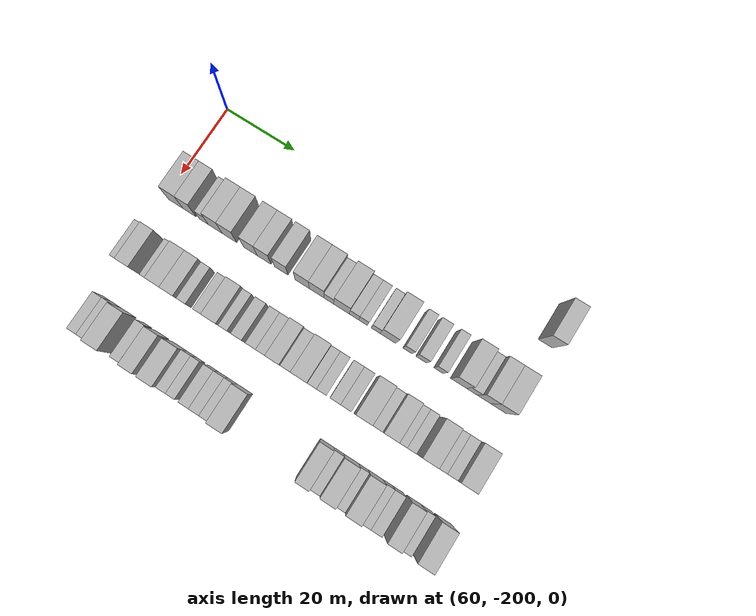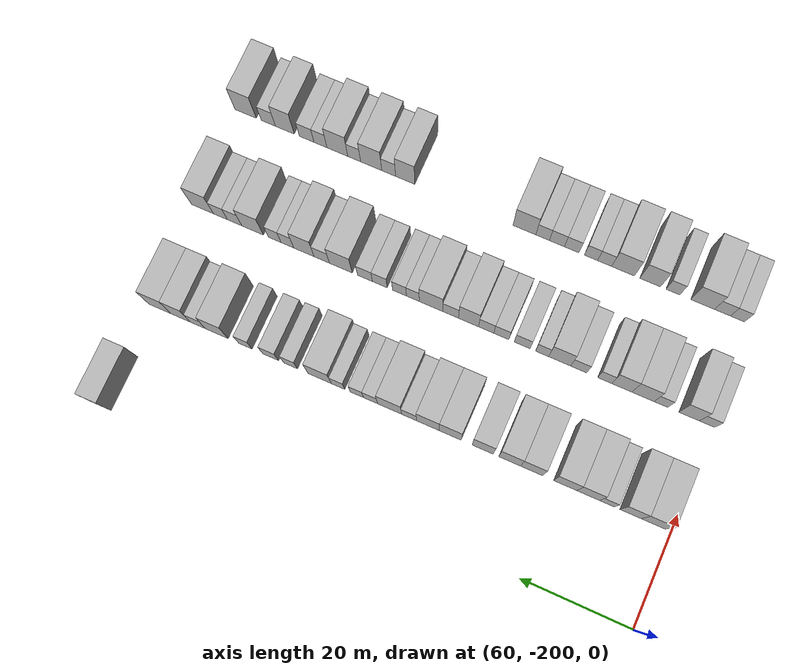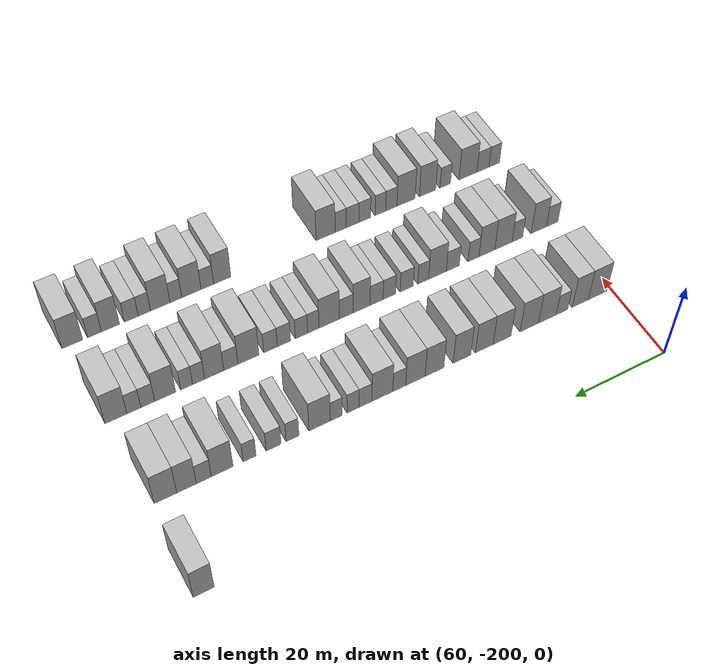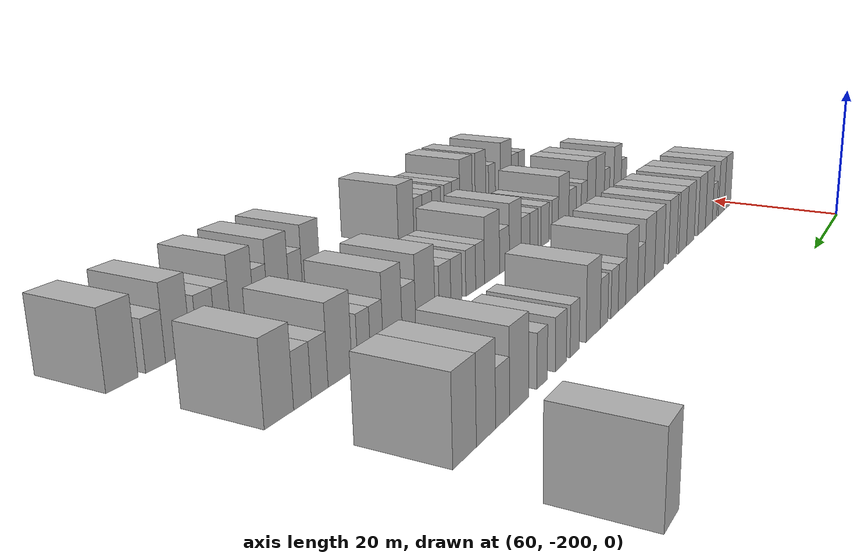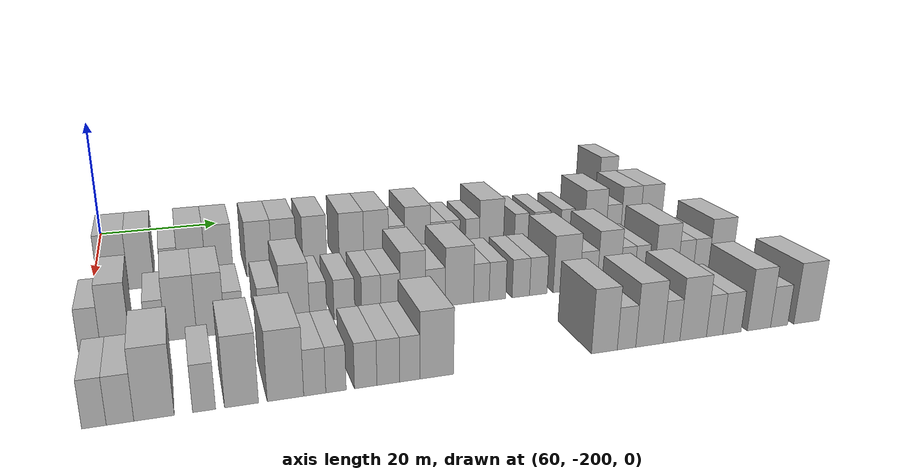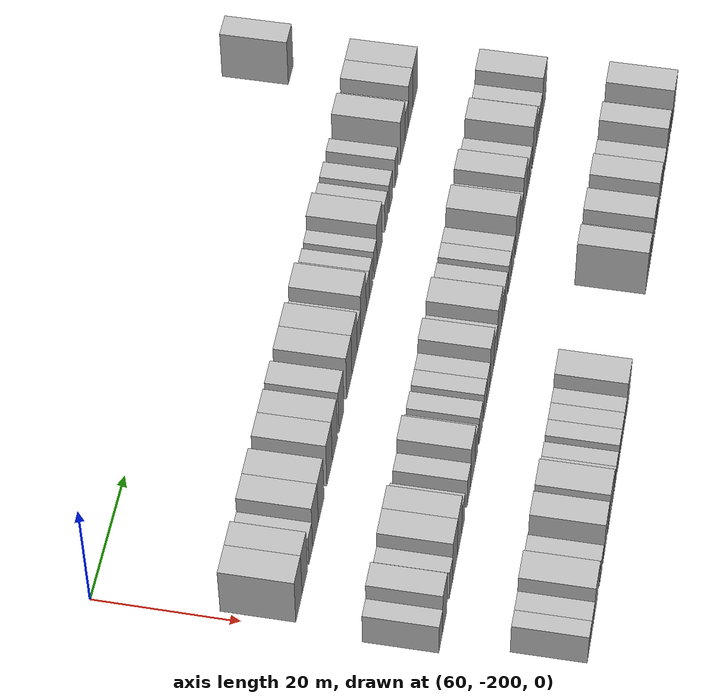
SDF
<sdf version="1.6">
 <world name="default">
  <model name="building_410">
   <static>1</static>
   <pose>63.0000 -104.4434 0 0.000000 0.000000 0.000000</pose>
   <link name="link">
    <pose>0 0 4.50 0 0 0</pose>
    <collision name="collision"><geometry><box><size>10.0000 3.8177 9.0000</size></box></geometry></collision>
    <visual name="visual">
     <cast_shadows>0</cast_shadows>
     <geometry><box><size>10.0000 3.8177 9.0000</size></box></geometry>
     <material>
      <script>
       <uri>model://HANNAS_wall/materials/scripts</uri>
       <uri>model://HANNAS_wall/materials/textures</uri>
       <name>vrc/HANNAS_wall</name>
      </script>
     </material>
    </visual>
   </link>
  </model>
  <model name="building_549">
   <static>1</static>
   <pose>82.0000 -196.7542 0 0.000000 0.000000 0.000000</pose>
   <link name="link">
    <pose>0 0 4.50 0 0 0</pose>
    <collision name="collision"><geometry><box><size>10.0000 4.3258 9.0000</size></box></geometry></collision>
    <visual name="visual">
     <cast_shadows>0</cast_shadows>
     <geometry><box><size>10.0000 4.3258 9.0000</size></box></geometry>
     <material>
      <script>
       <uri>model://HANNAS_wall/materials/scripts</uri>
       <uri>model://HANNAS_wall/materials/textures</uri>
       <name>vrc/HANNAS_wall</name>
      </script>
     </material>
    </visual>
   </link>
  </model>
  <model name="building_550">
   <static>1</static>
   <pose>82.0000 -192.7219 0 0.000000 0.000000 0.000000</pose>
   <link name="link">
    <pose>0 0 4.50 0 0 0</pose>
    <collision name="collision"><geometry><box><size>10.0000 3.7388 9.0000</size></box></geometry></collision>
    <visual name="visual">
     <cast_shadows>0</cast_shadows>
     <geometry><box><size>10.0000 3.7388 9.0000</size></box></geometry>
     <material>
      <script>
       <uri>model://HANNAS_wall/materials/scripts</uri>
       <uri>model://HANNAS_wall/materials/textures</uri>
       <name>vrc/HANNAS_wall</name>
      </script>
     </material>
    </visual>
   </link>
  </model>
  <model name="building_551">
   <static>1</static>
   <pose>82.0000 -188.5365 0 0.000000 0.000000 0.000000</pose>
   <link name="link">
    <pose>0 0 3.00 0 0 0</pose>
    <collision name="collision"><geometry><box><size>10.0000 2.6321 6.0000</size></box></geometry></collision>
    <visual name="visual">
     <cast_shadows>0</cast_shadows>
     <geometry><box><size>10.0000 2.6321 6.0000</size></box></geometry>
     <material>
      <script>
       <uri>model://HANNAS_wall/materials/scripts</uri>
       <uri>model://HANNAS_wall/materials/textures</uri>
       <name>vrc/HANNAS_wall</name>
      </script>
     </material>
    </visual>
   </link>
  </model>
  <model name="building_552">
   <static>1</static>
   <pose>82.0000 -185.1919 0 0.000000 0.000000 0.000000</pose>
   <link name="link">
    <pose>0 0 4.50 0 0 0</pose>
    <collision name="collision"><geometry><box><size>10.0000 4.0571 9.0000</size></box></geometry></collision>
    <visual name="visual">
     <cast_shadows>0</cast_shadows>
     <geometry><box><size>10.0000 4.0571 9.0000</size></box></geometry>
     <material>
      <script>
       <uri>model://HANNAS_wall/materials/scripts</uri>
       <uri>model://HANNAS_wall/materials/textures</uri>
       <name>vrc/HANNAS_wall</name>
      </script>
     </material>
    </visual>
   </link>
  </model>
  <model name="building_553">
   <static>1</static>
   <pose>82.0000 -181.0934 0 0.000000 0.000000 0.000000</pose>
   <link name="link">
    <pose>0 0 4.50 0 0 0</pose>
    <collision name="collision"><geometry><box><size>10.0000 4.1399 9.0000</size></box></geometry></collision>
    <visual name="visual">
     <cast_shadows>0</cast_shadows>
     <geometry><box><size>10.0000 4.1399 9.0000</size></box></geometry>
     <material>
      <script>
       <uri>model://HANNAS_wall/materials/scripts</uri>
       <uri>model://HANNAS_wall/materials/textures</uri>
       <name>vrc/HANNAS_wall</name>
      </script>
     </material>
    </visual>
   </link>
  </model>
  <model name="building_554">
   <static>1</static>
   <pose>82.0000 -175.0363 0 0.000000 0.000000 0.000000</pose>
   <link name="link">
    <pose>0 0 4.50 0 0 0</pose>
    <collision name="collision"><geometry><box><size>10.0000 3.9745 9.0000</size></box></geometry></collision>
    <visual name="visual">
     <cast_shadows>0</cast_shadows>
     <geometry><box><size>10.0000 3.9745 9.0000</size></box></geometry>
     <material>
      <script>
       <uri>model://HANNAS_wall/materials/scripts</uri>
       <uri>model://HANNAS_wall/materials/textures</uri>
       <name>vrc/HANNAS_wall</name>
      </script>
     </material>
    </visual>
   </link>
  </model>
  <model name="building_555">
   <static>1</static>
   <pose>82.0000 -171.0929 0 0.000000 0.000000 0.000000</pose>
   <link name="link">
    <pose>0 0 4.50 0 0 0</pose>
    <collision name="collision"><geometry><box><size>10.0000 3.9124 9.0000</size></box></geometry></collision>
    <visual name="visual">
     <cast_shadows>0</cast_shadows>
     <geometry><box><size>10.0000 3.9124 9.0000</size></box></geometry>
     <material>
      <script>
       <uri>model://HANNAS_wall/materials/scripts</uri>
       <uri>model://HANNAS_wall/materials/textures</uri>
       <name>vrc/HANNAS_wall</name>
      </script>
     </material>
    </visual>
   </link>
  </model>
  <model name="building_556">
   <static>1</static>
   <pose>82.0000 -166.2142 0 0.000000 0.000000 0.000000</pose>
   <link name="link">
    <pose>0 0 4.50 0 0 0</pose>
    <collision name="collision"><geometry><box><size>10.0000 3.8451 9.0000</size></box></geometry></collision>
    <visual name="visual">
     <cast_shadows>0</cast_shadows>
     <geometry><box><size>10.0000 3.8451 9.0000</size></box></geometry>
     <material>
      <script>
       <uri>model://HANNAS_wall/materials/scripts</uri>
       <uri>model://HANNAS_wall/materials/textures</uri>
       <name>vrc/HANNAS_wall</name>
      </script>
     </material>
    </visual>
   </link>
  </model>
  <model name="building_557">
   <static>1</static>
   <pose>82.0000 -160.2772 0 0.000000 0.000000 0.000000</pose>
   <link name="link">
    <pose>0 0 4.50 0 0 0</pose>
    <collision name="collision"><geometry><box><size>10.0000 4.0288 9.0000</size></box></geometry></collision>
    <visual name="visual">
     <cast_shadows>0</cast_shadows>
     <geometry><box><size>10.0000 4.0288 9.0000</size></box></geometry>
     <material>
      <script>
       <uri>model://HANNAS_wall/materials/scripts</uri>
       <uri>model://HANNAS_wall/materials/textures</uri>
       <name>vrc/HANNAS_wall</name>
      </script>
     </material>
    </visual>
   </link>
  </model>
  <model name="building_558">
   <static>1</static>
   <pose>82.0000 -156.1959 0 0.000000 0.000000 0.000000</pose>
   <link name="link">
    <pose>0 0 4.50 0 0 0</pose>
    <collision name="collision"><geometry><box><size>10.0000 4.1338 9.0000</size></box></geometry></collision>
    <visual name="visual">
     <cast_shadows>0</cast_shadows>
     <geometry><box><size>10.0000 4.1338 9.0000</size></box></geometry>
     <material>
      <script>
       <uri>model://HANNAS_wall/materials/scripts</uri>
       <uri>model://HANNAS_wall/materials/textures</uri>
       <name>vrc/HANNAS_wall</name>
      </script>
     </material>
    </visual>
   </link>
  </model>
  <model name="building_559">
   <static>1</static>
   <pose>82.0000 -152.7571 0 0.000000 0.000000 0.000000</pose>
   <link name="link">
    <pose>0 0 3.00 0 0 0</pose>
    <collision name="collision"><geometry><box><size>10.0000 2.7437 6.0000</size></box></geometry></collision>
    <visual name="visual">
     <cast_shadows>0</cast_shadows>
     <geometry><box><size>10.0000 2.7437 6.0000</size></box></geometry>
     <material>
      <script>
       <uri>model://HANNAS_wall/materials/scripts</uri>
       <uri>model://HANNAS_wall/materials/textures</uri>
       <name>vrc/HANNAS_wall</name>
      </script>
     </material>
    </visual>
   </link>
  </model>
  <model name="building_560">
   <static>1</static>
   <pose>82.0000 -149.1982 0 0.000000 0.000000 0.000000</pose>
   <link name="link">
    <pose>0 0 4.50 0 0 0</pose>
    <collision name="collision"><geometry><box><size>10.0000 4.3741 9.0000</size></box></geometry></collision>
    <visual name="visual">
     <cast_shadows>0</cast_shadows>
     <geometry><box><size>10.0000 4.3741 9.0000</size></box></geometry>
     <material>
      <script>
       <uri>model://HANNAS_wall/materials/scripts</uri>
       <uri>model://HANNAS_wall/materials/textures</uri>
       <name>vrc/HANNAS_wall</name>
      </script>
     </material>
    </visual>
   </link>
  </model>
  <model name="building_561">
   <static>1</static>
   <pose>82.0000 -145.6957 0 0.000000 0.000000 0.000000</pose>
   <link name="link">
    <pose>0 0 3.00 0 0 0</pose>
    <collision name="collision"><geometry><box><size>10.0000 2.6309 6.0000</size></box></geometry></collision>
    <visual name="visual">
     <cast_shadows>0</cast_shadows>
     <geometry><box><size>10.0000 2.6309 6.0000</size></box></geometry>
     <material>
      <script>
       <uri>model://HANNAS_wall/materials/scripts</uri>
       <uri>model://HANNAS_wall/materials/textures</uri>
       <name>vrc/HANNAS_wall</name>
      </script>
     </material>
    </visual>
   </link>
  </model>
  <model name="building_562">
   <static>1</static>
   <pose>82.0000 -143.1445 0 0.000000 0.000000 0.000000</pose>
   <link name="link">
    <pose>0 0 3.00 0 0 0</pose>
    <collision name="collision"><geometry><box><size>10.0000 2.4714 6.0000</size></box></geometry></collision>
    <visual name="visual">
     <cast_shadows>0</cast_shadows>
     <geometry><box><size>10.0000 2.4714 6.0000</size></box></geometry>
     <material>
      <script>
       <uri>model://HANNAS_wall/materials/scripts</uri>
       <uri>model://HANNAS_wall/materials/textures</uri>
       <name>vrc/HANNAS_wall</name>
      </script>
     </material>
    </visual>
   </link>
  </model>
  <model name="building_563">
   <static>1</static>
   <pose>82.0000 -139.6750 0 0.000000 0.000000 0.000000</pose>
   <link name="link">
    <pose>0 0 3.00 0 0 0</pose>
    <collision name="collision"><geometry><box><size>10.0000 2.4677 6.0000</size></box></geometry></collision>
    <visual name="visual">
     <cast_shadows>0</cast_shadows>
     <geometry><box><size>10.0000 2.4677 6.0000</size></box></geometry>
     <material>
      <script>
       <uri>model://HANNAS_wall/materials/scripts</uri>
       <uri>model://HANNAS_wall/materials/textures</uri>
       <name>vrc/HANNAS_wall</name>
      </script>
     </material>
    </visual>
   </link>
  </model>
  <model name="building_564">
   <static>1</static>
   <pose>82.0000 -136.2733 0 0.000000 0.000000 0.000000</pose>
   <link name="link">
    <pose>0 0 4.50 0 0 0</pose>
    <collision name="collision"><geometry><box><size>10.0000 4.3358 9.0000</size></box></geometry></collision>
    <visual name="visual">
     <cast_shadows>0</cast_shadows>
     <geometry><box><size>10.0000 4.3358 9.0000</size></box></geometry>
     <material>
      <script>
       <uri>model://HANNAS_wall/materials/scripts</uri>
       <uri>model://HANNAS_wall/materials/textures</uri>
       <name>vrc/HANNAS_wall</name>
      </script>
     </material>
    </visual>
   </link>
  </model>
  <model name="building_565">
   <static>1</static>
   <pose>82.0000 -130.8225 0 0.000000 0.000000 0.000000</pose>
   <link name="link">
    <pose>0 0 3.00 0 0 0</pose>
    <collision name="collision"><geometry><box><size>10.0000 2.5658 6.0000</size></box></geometry></collision>
    <visual name="visual">
     <cast_shadows>0</cast_shadows>
     <geometry><box><size>10.0000 2.5658 6.0000</size></box></geometry>
     <material>
      <script>
       <uri>model://HANNAS_wall/materials/scripts</uri>
       <uri>model://HANNAS_wall/materials/textures</uri>
       <name>vrc/HANNAS_wall</name>
      </script>
     </material>
    </visual>
   </link>
  </model>
  <model name="building_566">
   <static>1</static>
   <pose>82.0000 -127.0625 0 0.000000 0.000000 0.000000</pose>
   <link name="link">
    <pose>0 0 3.00 0 0 0</pose>
    <collision name="collision"><geometry><box><size>10.0000 2.9542 6.0000</size></box></geometry></collision>
    <visual name="visual">
     <cast_shadows>0</cast_shadows>
     <geometry><box><size>10.0000 2.9542 6.0000</size></box></geometry>
     <material>
      <script>
       <uri>model://HANNAS_wall/materials/scripts</uri>
       <uri>model://HANNAS_wall/materials/textures</uri>
       <name>vrc/HANNAS_wall</name>
      </script>
     </material>
    </visual>
   </link>
  </model>
  <model name="building_567">
   <static>1</static>
   <pose>82.0000 -122.3227 0 0.000000 0.000000 0.000000</pose>
   <link name="link">
    <pose>0 0 3.00 0 0 0</pose>
    <collision name="collision"><geometry><box><size>10.0000 2.5252 6.0000</size></box></geometry></collision>
    <visual name="visual">
     <cast_shadows>0</cast_shadows>
     <geometry><box><size>10.0000 2.5252 6.0000</size></box></geometry>
     <material>
      <script>
       <uri>model://HANNAS_wall/materials/scripts</uri>
       <uri>model://HANNAS_wall/materials/textures</uri>
       <name>vrc/HANNAS_wall</name>
      </script>
     </material>
    </visual>
   </link>
  </model>
  <model name="building_568">
   <static>1</static>
   <pose>82.0000 -116.9571 0 0.000000 0.000000 0.000000</pose>
   <link name="link">
    <pose>0 0 4.50 0 0 0</pose>
    <collision name="collision"><geometry><box><size>10.0000 4.2060 9.0000</size></box></geometry></collision>
    <visual name="visual">
     <cast_shadows>0</cast_shadows>
     <geometry><box><size>10.0000 4.2060 9.0000</size></box></geometry>
     <material>
      <script>
       <uri>model://HANNAS_wall/materials/scripts</uri>
       <uri>model://HANNAS_wall/materials/textures</uri>
       <name>vrc/HANNAS_wall</name>
      </script>
     </material>
    </visual>
   </link>
  </model>
  <model name="building_569">
   <static>1</static>
   <pose>82.0000 -113.4150 0 0.000000 0.000000 0.000000</pose>
   <link name="link">
    <pose>0 0 3.00 0 0 0</pose>
    <collision name="collision"><geometry><box><size>10.0000 2.8783 6.0000</size></box></geometry></collision>
    <visual name="visual">
     <cast_shadows>0</cast_shadows>
     <geometry><box><size>10.0000 2.8783 6.0000</size></box></geometry>
     <material>
      <script>
       <uri>model://HANNAS_wall/materials/scripts</uri>
       <uri>model://HANNAS_wall/materials/textures</uri>
       <name>vrc/HANNAS_wall</name>
      </script>
     </material>
    </visual>
   </link>
  </model>
  <model name="building_570">
   <static>1</static>
   <pose>82.0000 -110.1011 0 0.000000 0.000000 0.000000</pose>
   <link name="link">
    <pose>0 0 4.50 0 0 0</pose>
    <collision name="collision"><geometry><box><size>10.0000 3.7495 9.0000</size></box></geometry></collision>
    <visual name="visual">
     <cast_shadows>0</cast_shadows>
     <geometry><box><size>10.0000 3.7495 9.0000</size></box></geometry>
     <material>
      <script>
       <uri>model://HANNAS_wall/materials/scripts</uri>
       <uri>model://HANNAS_wall/materials/textures</uri>
       <name>vrc/HANNAS_wall</name>
      </script>
     </material>
    </visual>
   </link>
  </model>
  <model name="building_571">
   <static>1</static>
   <pose>82.0000 -106.0929 0 0.000000 0.000000 0.000000</pose>
   <link name="link">
    <pose>0 0 4.50 0 0 0</pose>
    <collision name="collision"><geometry><box><size>10.0000 4.2669 9.0000</size></box></geometry></collision>
    <visual name="visual">
     <cast_shadows>0</cast_shadows>
     <geometry><box><size>10.0000 4.2669 9.0000</size></box></geometry>
     <material>
      <script>
       <uri>model://HANNAS_wall/materials/scripts</uri>
       <uri>model://HANNAS_wall/materials/textures</uri>
       <name>vrc/HANNAS_wall</name>
      </script>
     </material>
    </visual>
   </link>
  </model>
  <model name="building_728">
   <static>1</static>
   <pose>101.0000 -199.0453 0 0.000000 0.000000 0.000000</pose>
   <link name="link">
    <pose>0 0 3.00 0 0 0</pose>
    <collision name="collision"><geometry><box><size>10.0000 2.7392 6.0000</size></box></geometry></collision>
    <visual name="visual">
     <cast_shadows>0</cast_shadows>
     <geometry><box><size>10.0000 2.7392 6.0000</size></box></geometry>
     <material>
      <script>
       <uri>model://HANNAS_wall/materials/scripts</uri>
       <uri>model://HANNAS_wall/materials/textures</uri>
       <name>vrc/HANNAS_wall</name>
      </script>
     </material>
    </visual>
   </link>
  </model>
  <model name="building_729">
   <static>1</static>
   <pose>101.0000 -195.8410 0 0.000000 0.000000 0.000000</pose>
   <link name="link">
    <pose>0 0 4.50 0 0 0</pose>
    <collision name="collision"><geometry><box><size>10.0000 3.6695 9.0000</size></box></geometry></collision>
    <visual name="visual">
     <cast_shadows>0</cast_shadows>
     <geometry><box><size>10.0000 3.6695 9.0000</size></box></geometry>
     <material>
      <script>
       <uri>model://HANNAS_wall/materials/scripts</uri>
       <uri>model://HANNAS_wall/materials/textures</uri>
       <name>vrc/HANNAS_wall</name>
      </script>
     </material>
    </visual>
   </link>
  </model>
  <model name="building_730">
   <static>1</static>
   <pose>101.0000 -190.7675 0 0.000000 0.000000 0.000000</pose>
   <link name="link">
    <pose>0 0 3.00 0 0 0</pose>
    <collision name="collision"><geometry><box><size>10.0000 2.4774 6.0000</size></box></geometry></collision>
    <visual name="visual">
     <cast_shadows>0</cast_shadows>
     <geometry><box><size>10.0000 2.4774 6.0000</size></box></geometry>
     <material>
      <script>
       <uri>model://HANNAS_wall/materials/scripts</uri>
       <uri>model://HANNAS_wall/materials/textures</uri>
       <name>vrc/HANNAS_wall</name>
      </script>
     </material>
    </visual>
   </link>
  </model>
  <model name="building_731">
   <static>1</static>
   <pose>101.0000 -187.5142 0 0.000000 0.000000 0.000000</pose>
   <link name="link">
    <pose>0 0 4.50 0 0 0</pose>
    <collision name="collision"><geometry><box><size>10.0000 4.0293 9.0000</size></box></geometry></collision>
    <visual name="visual">
     <cast_shadows>0</cast_shadows>
     <geometry><box><size>10.0000 4.0293 9.0000</size></box></geometry>
     <material>
      <script>
       <uri>model://HANNAS_wall/materials/scripts</uri>
       <uri>model://HANNAS_wall/materials/textures</uri>
       <name>vrc/HANNAS_wall</name>
      </script>
     </material>
    </visual>
   </link>
  </model>
  <model name="building_732">
   <static>1</static>
   <pose>101.0000 -183.6543 0 0.000000 0.000000 0.000000</pose>
   <link name="link">
    <pose>0 0 4.50 0 0 0</pose>
    <collision name="collision"><geometry><box><size>10.0000 3.6906 9.0000</size></box></geometry></collision>
    <visual name="visual">
     <cast_shadows>0</cast_shadows>
     <geometry><box><size>10.0000 3.6906 9.0000</size></box></geometry>
     <material>
      <script>
       <uri>model://HANNAS_wall/materials/scripts</uri>
       <uri>model://HANNAS_wall/materials/textures</uri>
       <name>vrc/HANNAS_wall</name>
      </script>
     </material>
    </visual>
   </link>
  </model>
  <model name="building_733">
   <static>1</static>
   <pose>101.0000 -180.5530 0 0.000000 0.000000 0.000000</pose>
   <link name="link">
    <pose>0 0 3.00 0 0 0</pose>
    <collision name="collision"><geometry><box><size>10.0000 2.5119 6.0000</size></box></geometry></collision>
    <visual name="visual">
     <cast_shadows>0</cast_shadows>
     <geometry><box><size>10.0000 2.5119 6.0000</size></box></geometry>
     <material>
      <script>
       <uri>model://HANNAS_wall/materials/scripts</uri>
       <uri>model://HANNAS_wall/materials/textures</uri>
       <name>vrc/HANNAS_wall</name>
      </script>
     </material>
    </visual>
   </link>
  </model>
  <model name="building_734">
   <static>1</static>
   <pose>101.0000 -175.8130 0 0.000000 0.000000 0.000000</pose>
   <link name="link">
    <pose>0 0 3.00 0 0 0</pose>
    <collision name="collision"><geometry><box><size>10.0000 2.9681 6.0000</size></box></geometry></collision>
    <visual name="visual">
     <cast_shadows>0</cast_shadows>
     <geometry><box><size>10.0000 2.9681 6.0000</size></box></geometry>
     <material>
      <script>
       <uri>model://HANNAS_wall/materials/scripts</uri>
       <uri>model://HANNAS_wall/materials/textures</uri>
       <name>vrc/HANNAS_wall</name>
      </script>
     </material>
    </visual>
   </link>
  </model>
  <model name="building_735">
   <static>1</static>
   <pose>101.0000 -172.3189 0 0.000000 0.000000 0.000000</pose>
   <link name="link">
    <pose>0 0 4.50 0 0 0</pose>
    <collision name="collision"><geometry><box><size>10.0000 4.0200 9.0000</size></box></geometry></collision>
    <visual name="visual">
     <cast_shadows>0</cast_shadows>
     <geometry><box><size>10.0000 4.0200 9.0000</size></box></geometry>
     <material>
      <script>
       <uri>model://HANNAS_wall/materials/scripts</uri>
       <uri>model://HANNAS_wall/materials/textures</uri>
       <name>vrc/HANNAS_wall</name>
      </script>
     </material>
    </visual>
   </link>
  </model>
  <model name="building_736">
   <static>1</static>
   <pose>101.0000 -169.1031 0 0.000000 0.000000 0.000000</pose>
   <link name="link">
    <pose>0 0 3.00 0 0 0</pose>
    <collision name="collision"><geometry><box><size>10.0000 2.4117 6.0000</size></box></geometry></collision>
    <visual name="visual">
     <cast_shadows>0</cast_shadows>
     <geometry><box><size>10.0000 2.4117 6.0000</size></box></geometry>
     <material>
      <script>
       <uri>model://HANNAS_wall/materials/scripts</uri>
       <uri>model://HANNAS_wall/materials/textures</uri>
       <name>vrc/HANNAS_wall</name>
      </script>
     </material>
    </visual>
   </link>
  </model>
  <model name="building_737">
   <static>1</static>
   <pose>101.0000 -165.4237 0 0.000000 0.000000 0.000000</pose>
   <link name="link">
    <pose>0 0 3.00 0 0 0</pose>
    <collision name="collision"><geometry><box><size>10.0000 2.9471 6.0000</size></box></geometry></collision>
    <visual name="visual">
     <cast_shadows>0</cast_shadows>
     <geometry><box><size>10.0000 2.9471 6.0000</size></box></geometry>
     <material>
      <script>
       <uri>model://HANNAS_wall/materials/scripts</uri>
       <uri>model://HANNAS_wall/materials/textures</uri>
       <name>vrc/HANNAS_wall</name>
      </script>
     </material>
    </visual>
   </link>
  </model>
  <model name="building_738">
   <static>1</static>
   <pose>101.0000 -161.5662 0 0.000000 0.000000 0.000000</pose>
   <link name="link">
    <pose>0 0 3.00 0 0 0</pose>
    <collision name="collision"><geometry><box><size>10.0000 2.7679 6.0000</size></box></geometry></collision>
    <visual name="visual">
     <cast_shadows>0</cast_shadows>
     <geometry><box><size>10.0000 2.7679 6.0000</size></box></geometry>
     <material>
      <script>
       <uri>model://HANNAS_wall/materials/scripts</uri>
       <uri>model://HANNAS_wall/materials/textures</uri>
       <name>vrc/HANNAS_wall</name>
      </script>
     </material>
    </visual>
   </link>
  </model>
  <model name="building_739">
   <static>1</static>
   <pose>101.0000 -158.7598 0 0.000000 0.000000 0.000000</pose>
   <link name="link">
    <pose>0 0 3.00 0 0 0</pose>
    <collision name="collision"><geometry><box><size>10.0000 2.8449 6.0000</size></box></geometry></collision>
    <visual name="visual">
     <cast_shadows>0</cast_shadows>
     <geometry><box><size>10.0000 2.8449 6.0000</size></box></geometry>
     <material>
      <script>
       <uri>model://HANNAS_wall/materials/scripts</uri>
       <uri>model://HANNAS_wall/materials/textures</uri>
       <name>vrc/HANNAS_wall</name>
      </script>
     </material>
    </visual>
   </link>
  </model>
  <model name="building_740">
   <static>1</static>
   <pose>101.0000 -155.4706 0 0.000000 0.000000 0.000000</pose>
   <link name="link">
    <pose>0 0 4.50 0 0 0</pose>
    <collision name="collision"><geometry><box><size>10.0000 3.7336 9.0000</size></box></geometry></collision>
    <visual name="visual">
     <cast_shadows>0</cast_shadows>
     <geometry><box><size>10.0000 3.7336 9.0000</size></box></geometry>
     <material>
      <script>
       <uri>model://HANNAS_wall/materials/scripts</uri>
       <uri>model://HANNAS_wall/materials/textures</uri>
       <name>vrc/HANNAS_wall</name>
      </script>
     </material>
    </visual>
   </link>
  </model>
  <model name="building_741">
   <static>1</static>
   <pose>101.0000 -152.1279 0 0.000000 0.000000 0.000000</pose>
   <link name="link">
    <pose>0 0 3.00 0 0 0</pose>
    <collision name="collision"><geometry><box><size>10.0000 2.9516 6.0000</size></box></geometry></collision>
    <visual name="visual">
     <cast_shadows>0</cast_shadows>
     <geometry><box><size>10.0000 2.9516 6.0000</size></box></geometry>
     <material>
      <script>
       <uri>model://HANNAS_wall/materials/scripts</uri>
       <uri>model://HANNAS_wall/materials/textures</uri>
       <name>vrc/HANNAS_wall</name>
      </script>
     </material>
    </visual>
   </link>
  </model>
  <model name="building_742">
   <static>1</static>
   <pose>101.0000 -148.4767 0 0.000000 0.000000 0.000000</pose>
   <link name="link">
    <pose>0 0 4.50 0 0 0</pose>
    <collision name="collision"><geometry><box><size>10.0000 4.3509 9.0000</size></box></geometry></collision>
    <visual name="visual">
     <cast_shadows>0</cast_shadows>
     <geometry><box><size>10.0000 4.3509 9.0000</size></box></geometry>
     <material>
      <script>
       <uri>model://HANNAS_wall/materials/scripts</uri>
       <uri>model://HANNAS_wall/materials/textures</uri>
       <name>vrc/HANNAS_wall</name>
      </script>
     </material>
    </visual>
   </link>
  </model>
  <model name="building_743">
   <static>1</static>
   <pose>101.0000 -145.0898 0 0.000000 0.000000 0.000000</pose>
   <link name="link">
    <pose>0 0 3.00 0 0 0</pose>
    <collision name="collision"><geometry><box><size>10.0000 2.4229 6.0000</size></box></geometry></collision>
    <visual name="visual">
     <cast_shadows>0</cast_shadows>
     <geometry><box><size>10.0000 2.4229 6.0000</size></box></geometry>
     <material>
      <script>
       <uri>model://HANNAS_wall/materials/scripts</uri>
       <uri>model://HANNAS_wall/materials/textures</uri>
       <name>vrc/HANNAS_wall</name>
      </script>
     </material>
    </visual>
   </link>
  </model>
  <model name="building_744">
   <static>1</static>
   <pose>101.0000 -142.5710 0 0.000000 0.000000 0.000000</pose>
   <link name="link">
    <pose>0 0 3.00 0 0 0</pose>
    <collision name="collision"><geometry><box><size>10.0000 2.6146 6.0000</size></box></geometry></collision>
    <visual name="visual">
     <cast_shadows>0</cast_shadows>
     <geometry><box><size>10.0000 2.6146 6.0000</size></box></geometry>
     <material>
      <script>
       <uri>model://HANNAS_wall/materials/scripts</uri>
       <uri>model://HANNAS_wall/materials/textures</uri>
       <name>vrc/HANNAS_wall</name>
      </script>
     </material>
    </visual>
   </link>
  </model>
  <model name="building_745">
   <static>1</static>
   <pose>101.0000 -138.8740 0 0.000000 0.000000 0.000000</pose>
   <link name="link">
    <pose>0 0 3.00 0 0 0</pose>
    <collision name="collision"><geometry><box><size>10.0000 2.7795 6.0000</size></box></geometry></collision>
    <visual name="visual">
     <cast_shadows>0</cast_shadows>
     <geometry><box><size>10.0000 2.7795 6.0000</size></box></geometry>
     <material>
      <script>
       <uri>model://HANNAS_wall/materials/scripts</uri>
       <uri>model://HANNAS_wall/materials/textures</uri>
       <name>vrc/HANNAS_wall</name>
      </script>
     </material>
    </visual>
   </link>
  </model>
  <model name="building_746">
   <static>1</static>
   <pose>101.0000 -136.0717 0 0.000000 0.000000 0.000000</pose>
   <link name="link">
    <pose>0 0 3.00 0 0 0</pose>
    <collision name="collision"><geometry><box><size>10.0000 2.8250 6.0000</size></box></geometry></collision>
    <visual name="visual">
     <cast_shadows>0</cast_shadows>
     <geometry><box><size>10.0000 2.8250 6.0000</size></box></geometry>
     <material>
      <script>
       <uri>model://HANNAS_wall/materials/scripts</uri>
       <uri>model://HANNAS_wall/materials/textures</uri>
       <name>vrc/HANNAS_wall</name>
      </script>
     </material>
    </visual>
   </link>
  </model>
  <model name="building_747">
   <static>1</static>
   <pose>101.0000 -131.4882 0 0.000000 0.000000 0.000000</pose>
   <link name="link">
    <pose>0 0 4.50 0 0 0</pose>
    <collision name="collision"><geometry><box><size>10.0000 4.3422 9.0000</size></box></geometry></collision>
    <visual name="visual">
     <cast_shadows>0</cast_shadows>
     <geometry><box><size>10.0000 4.3422 9.0000</size></box></geometry>
     <material>
      <script>
       <uri>model://HANNAS_wall/materials/scripts</uri>
       <uri>model://HANNAS_wall/materials/textures</uri>
       <name>vrc/HANNAS_wall</name>
      </script>
     </material>
    </visual>
   </link>
  </model>
  <model name="building_748">
   <static>1</static>
   <pose>101.0000 -127.8671 0 0.000000 0.000000 0.000000</pose>
   <link name="link">
    <pose>0 0 3.00 0 0 0</pose>
    <collision name="collision"><geometry><box><size>10.0000 2.9001 6.0000</size></box></geometry></collision>
    <visual name="visual">
     <cast_shadows>0</cast_shadows>
     <geometry><box><size>10.0000 2.9001 6.0000</size></box></geometry>
     <material>
      <script>
       <uri>model://HANNAS_wall/materials/scripts</uri>
       <uri>model://HANNAS_wall/materials/textures</uri>
       <name>vrc/HANNAS_wall</name>
      </script>
     </material>
    </visual>
   </link>
  </model>
  <model name="building_749">
   <static>1</static>
   <pose>101.0000 -124.4747 0 0.000000 0.000000 0.000000</pose>
   <link name="link">
    <pose>0 0 4.50 0 0 0</pose>
    <collision name="collision"><geometry><box><size>10.0000 3.8846 9.0000</size></box></geometry></collision>
    <visual name="visual">
     <cast_shadows>0</cast_shadows>
     <geometry><box><size>10.0000 3.8846 9.0000</size></box></geometry>
     <material>
      <script>
       <uri>model://HANNAS_wall/materials/scripts</uri>
       <uri>model://HANNAS_wall/materials/textures</uri>
       <name>vrc/HANNAS_wall</name>
      </script>
     </material>
    </visual>
   </link>
  </model>
  <model name="building_750">
   <static>1</static>
   <pose>101.0000 -121.3133 0 0.000000 0.000000 0.000000</pose>
   <link name="link">
    <pose>0 0 3.00 0 0 0</pose>
    <collision name="collision"><geometry><box><size>10.0000 2.4384 6.0000</size></box></geometry></collision>
    <visual name="visual">
     <cast_shadows>0</cast_shadows>
     <geometry><box><size>10.0000 2.4384 6.0000</size></box></geometry>
     <material>
      <script>
       <uri>model://HANNAS_wall/materials/scripts</uri>
       <uri>model://HANNAS_wall/materials/textures</uri>
       <name>vrc/HANNAS_wall</name>
      </script>
     </material>
    </visual>
   </link>
  </model>
  <model name="building_751">
   <static>1</static>
   <pose>101.0000 -118.8918 0 0.000000 0.000000 0.000000</pose>
   <link name="link">
    <pose>0 0 3.00 0 0 0</pose>
    <collision name="collision"><geometry><box><size>10.0000 2.4047 6.0000</size></box></geometry></collision>
    <visual name="visual">
     <cast_shadows>0</cast_shadows>
     <geometry><box><size>10.0000 2.4047 6.0000</size></box></geometry>
     <material>
      <script>
       <uri>model://HANNAS_wall/materials/scripts</uri>
       <uri>model://HANNAS_wall/materials/textures</uri>
       <name>vrc/HANNAS_wall</name>
      </script>
     </material>
    </visual>
   </link>
  </model>
  <model name="building_752">
   <static>1</static>
   <pose>101.0000 -114.6178 0 0.000000 0.000000 0.000000</pose>
   <link name="link">
    <pose>0 0 4.50 0 0 0</pose>
    <collision name="collision"><geometry><box><size>10.0000 4.1432 9.0000</size></box></geometry></collision>
    <visual name="visual">
     <cast_shadows>0</cast_shadows>
     <geometry><box><size>10.0000 4.1432 9.0000</size></box></geometry>
     <material>
      <script>
       <uri>model://HANNAS_wall/materials/scripts</uri>
       <uri>model://HANNAS_wall/materials/textures</uri>
       <name>vrc/HANNAS_wall</name>
      </script>
     </material>
    </visual>
   </link>
  </model>
  <model name="building_753">
   <static>1</static>
   <pose>101.0000 -111.1733 0 0.000000 0.000000 0.000000</pose>
   <link name="link">
    <pose>0 0 3.00 0 0 0</pose>
    <collision name="collision"><geometry><box><size>10.0000 2.7458 6.0000</size></box></geometry></collision>
    <visual name="visual">
     <cast_shadows>0</cast_shadows>
     <geometry><box><size>10.0000 2.7458 6.0000</size></box></geometry>
     <material>
      <script>
       <uri>model://HANNAS_wall/materials/scripts</uri>
       <uri>model://HANNAS_wall/materials/textures</uri>
       <name>vrc/HANNAS_wall</name>
      </script>
     </material>
    </visual>
   </link>
  </model>
  <model name="building_754">
   <static>1</static>
   <pose>101.0000 -108.4320 0 0.000000 0.000000 0.000000</pose>
   <link name="link">
    <pose>0 0 3.00 0 0 0</pose>
    <collision name="collision"><geometry><box><size>10.0000 2.7368 6.0000</size></box></geometry></collision>
    <visual name="visual">
     <cast_shadows>0</cast_shadows>
     <geometry><box><size>10.0000 2.7368 6.0000</size></box></geometry>
     <material>
      <script>
       <uri>model://HANNAS_wall/materials/scripts</uri>
       <uri>model://HANNAS_wall/materials/textures</uri>
       <name>vrc/HANNAS_wall</name>
      </script>
     </material>
    </visual>
   </link>
  </model>
  <model name="building_755">
   <static>1</static>
   <pose>101.0000 -104.9224 0 0.000000 0.000000 0.000000</pose>
   <link name="link">
    <pose>0 0 4.50 0 0 0</pose>
    <collision name="collision"><geometry><box><size>10.0000 4.2823 9.0000</size></box></geometry></collision>
    <visual name="visual">
     <cast_shadows>0</cast_shadows>
     <geometry><box><size>10.0000 4.2823 9.0000</size></box></geometry>
     <material>
      <script>
       <uri>model://HANNAS_wall/materials/scripts</uri>
       <uri>model://HANNAS_wall/materials/textures</uri>
       <name>vrc/HANNAS_wall</name>
      </script>
     </material>
    </visual>
   </link>
  </model>
  <model name="building_902">
   <static>1</static>
   <pose>120.0000 -197.4242 0 0.000000 0.000000 0.000000</pose>
   <link name="link">
    <pose>0 0 3.00 0 0 0</pose>
    <collision name="collision"><geometry><box><size>10.0000 2.5636 6.0000</size></box></geometry></collision>
    <visual name="visual">
     <cast_shadows>0</cast_shadows>
     <geometry><box><size>10.0000 2.5636 6.0000</size></box></geometry>
     <material>
      <script>
       <uri>model://HANNAS_wall/materials/scripts</uri>
       <uri>model://HANNAS_wall/materials/textures</uri>
       <name>vrc/HANNAS_wall</name>
      </script>
     </material>
    </visual>
   </link>
  </model>
  <model name="building_903">
   <static>1</static>
   <pose>120.0000 -194.6872 0 0.000000 0.000000 0.000000</pose>
   <link name="link">
    <pose>0 0 3.00 0 0 0</pose>
    <collision name="collision"><geometry><box><size>10.0000 2.9105 6.0000</size></box></geometry></collision>
    <visual name="visual">
     <cast_shadows>0</cast_shadows>
     <geometry><box><size>10.0000 2.9105 6.0000</size></box></geometry>
     <material>
      <script>
       <uri>model://HANNAS_wall/materials/scripts</uri>
       <uri>model://HANNAS_wall/materials/textures</uri>
       <name>vrc/HANNAS_wall</name>
      </script>
     </material>
    </visual>
   </link>
  </model>
  <model name="building_904">
   <static>1</static>
   <pose>120.0000 -191.0581 0 0.000000 0.000000 0.000000</pose>
   <link name="link">
    <pose>0 0 4.50 0 0 0</pose>
    <collision name="collision"><geometry><box><size>10.0000 4.3476 9.0000</size></box></geometry></collision>
    <visual name="visual">
     <cast_shadows>0</cast_shadows>
     <geometry><box><size>10.0000 4.3476 9.0000</size></box></geometry>
     <material>
      <script>
       <uri>model://HANNAS_wall/materials/scripts</uri>
       <uri>model://HANNAS_wall/materials/textures</uri>
       <name>vrc/HANNAS_wall</name>
      </script>
     </material>
    </visual>
   </link>
  </model>
  <model name="building_905">
   <static>1</static>
   <pose>120.0000 -185.6082 0 0.000000 0.000000 0.000000</pose>
   <link name="link">
    <pose>0 0 3.00 0 0 0</pose>
    <collision name="collision"><geometry><box><size>10.0000 2.5522 6.0000</size></box></geometry></collision>
    <visual name="visual">
     <cast_shadows>0</cast_shadows>
     <geometry><box><size>10.0000 2.5522 6.0000</size></box></geometry>
     <material>
      <script>
       <uri>model://HANNAS_wall/materials/scripts</uri>
       <uri>model://HANNAS_wall/materials/textures</uri>
       <name>vrc/HANNAS_wall</name>
      </script>
     </material>
    </visual>
   </link>
  </model>
  <model name="building_906">
   <static>1</static>
   <pose>120.0000 -181.4112 0 0.000000 0.000000 0.000000</pose>
   <link name="link">
    <pose>0 0 4.50 0 0 0</pose>
    <collision name="collision"><geometry><box><size>10.0000 3.8417 9.0000</size></box></geometry></collision>
    <visual name="visual">
     <cast_shadows>0</cast_shadows>
     <geometry><box><size>10.0000 3.8417 9.0000</size></box></geometry>
     <material>
      <script>
       <uri>model://HANNAS_wall/materials/scripts</uri>
       <uri>model://HANNAS_wall/materials/textures</uri>
       <name>vrc/HANNAS_wall</name>
      </script>
     </material>
    </visual>
   </link>
  </model>
  <model name="building_907">
   <static>1</static>
   <pose>120.0000 -176.3677 0 0.000000 0.000000 0.000000</pose>
   <link name="link">
    <pose>0 0 4.50 0 0 0</pose>
    <collision name="collision"><geometry><box><size>10.0000 4.2454 9.0000</size></box></geometry></collision>
    <visual name="visual">
     <cast_shadows>0</cast_shadows>
     <geometry><box><size>10.0000 4.2454 9.0000</size></box></geometry>
     <material>
      <script>
       <uri>model://HANNAS_wall/materials/scripts</uri>
       <uri>model://HANNAS_wall/materials/textures</uri>
       <name>vrc/HANNAS_wall</name>
      </script>
     </material>
    </visual>
   </link>
  </model>
  <model name="building_908">
   <static>1</static>
   <pose>120.0000 -172.9345 0 0.000000 0.000000 0.000000</pose>
   <link name="link">
    <pose>0 0 3.00 0 0 0</pose>
    <collision name="collision"><geometry><box><size>10.0000 2.6209 6.0000</size></box></geometry></collision>
    <visual name="visual">
     <cast_shadows>0</cast_shadows>
     <geometry><box><size>10.0000 2.6209 6.0000</size></box></geometry>
     <material>
      <script>
       <uri>model://HANNAS_wall/materials/scripts</uri>
       <uri>model://HANNAS_wall/materials/textures</uri>
       <name>vrc/HANNAS_wall</name>
      </script>
     </material>
    </visual>
   </link>
  </model>
  <model name="building_909">
   <static>1</static>
   <pose>120.0000 -170.4003 0 0.000000 0.000000 0.000000</pose>
   <link name="link">
    <pose>0 0 3.00 0 0 0</pose>
    <collision name="collision"><geometry><box><size>10.0000 2.4476 6.0000</size></box></geometry></collision>
    <visual name="visual">
     <cast_shadows>0</cast_shadows>
     <geometry><box><size>10.0000 2.4476 6.0000</size></box></geometry>
     <material>
      <script>
       <uri>model://HANNAS_wall/materials/scripts</uri>
       <uri>model://HANNAS_wall/materials/textures</uri>
       <name>vrc/HANNAS_wall</name>
      </script>
     </material>
    </visual>
   </link>
  </model>
  <model name="building_910">
   <static>1</static>
   <pose>120.0000 -166.8060 0 0.000000 0.000000 0.000000</pose>
   <link name="link">
    <pose>0 0 3.00 0 0 0</pose>
    <collision name="collision"><geometry><box><size>10.0000 2.7410 6.0000</size></box></geometry></collision>
    <visual name="visual">
     <cast_shadows>0</cast_shadows>
     <geometry><box><size>10.0000 2.7410 6.0000</size></box></geometry>
     <material>
      <script>
       <uri>model://HANNAS_wall/materials/scripts</uri>
       <uri>model://HANNAS_wall/materials/textures</uri>
       <name>vrc/HANNAS_wall</name>
      </script>
     </material>
    </visual>
   </link>
  </model>
  <model name="building_911">
   <static>1</static>
   <pose>120.0000 -164.0271 0 0.000000 0.000000 0.000000</pose>
   <link name="link">
    <pose>0 0 3.00 0 0 0</pose>
    <collision name="collision"><geometry><box><size>10.0000 2.8169 6.0000</size></box></geometry></collision>
    <visual name="visual">
     <cast_shadows>0</cast_shadows>
     <geometry><box><size>10.0000 2.8169 6.0000</size></box></geometry>
     <material>
      <script>
       <uri>model://HANNAS_wall/materials/scripts</uri>
       <uri>model://HANNAS_wall/materials/textures</uri>
       <name>vrc/HANNAS_wall</name>
      </script>
     </material>
    </visual>
   </link>
  </model>
  <model name="building_912">
   <static>1</static>
   <pose>120.0000 -161.3396 0 0.000000 0.000000 0.000000</pose>
   <link name="link">
    <pose>0 0 3.00 0 0 0</pose>
    <collision name="collision"><geometry><box><size>10.0000 2.5580 6.0000</size></box></geometry></collision>
    <visual name="visual">
     <cast_shadows>0</cast_shadows>
     <geometry><box><size>10.0000 2.5580 6.0000</size></box></geometry>
     <material>
      <script>
       <uri>model://HANNAS_wall/materials/scripts</uri>
       <uri>model://HANNAS_wall/materials/textures</uri>
       <name>vrc/HANNAS_wall</name>
      </script>
     </material>
    </visual>
   </link>
  </model>
  <model name="building_913">
   <static>1</static>
   <pose>120.0000 -157.9151 0 0.000000 0.000000 0.000000</pose>
   <link name="link">
    <pose>0 0 4.50 0 0 0</pose>
    <collision name="collision"><geometry><box><size>10.0000 4.2909 9.0000</size></box></geometry></collision>
    <visual name="visual">
     <cast_shadows>0</cast_shadows>
     <geometry><box><size>10.0000 4.2909 9.0000</size></box></geometry>
     <material>
      <script>
       <uri>model://HANNAS_wall/materials/scripts</uri>
       <uri>model://HANNAS_wall/materials/textures</uri>
       <name>vrc/HANNAS_wall</name>
      </script>
     </material>
    </visual>
   </link>
  </model>
  <model name="building_914">
   <static>1</static>
   <pose>120.0000 -135.2382 0 0.000000 0.000000 0.000000</pose>
   <link name="link">
    <pose>0 0 4.50 0 0 0</pose>
    <collision name="collision"><geometry><box><size>10.0000 3.6877 9.0000</size></box></geometry></collision>
    <visual name="visual">
     <cast_shadows>0</cast_shadows>
     <geometry><box><size>10.0000 3.6877 9.0000</size></box></geometry>
     <material>
      <script>
       <uri>model://HANNAS_wall/materials/scripts</uri>
       <uri>model://HANNAS_wall/materials/textures</uri>
       <name>vrc/HANNAS_wall</name>
      </script>
     </material>
    </visual>
   </link>
  </model>
  <model name="building_915">
   <static>1</static>
   <pose>120.0000 -132.0544 0 0.000000 0.000000 0.000000</pose>
   <link name="link">
    <pose>0 0 3.00 0 0 0</pose>
    <collision name="collision"><geometry><box><size>10.0000 2.6798 6.0000</size></box></geometry></collision>
    <visual name="visual">
     <cast_shadows>0</cast_shadows>
     <geometry><box><size>10.0000 2.6798 6.0000</size></box></geometry>
     <material>
      <script>
       <uri>model://HANNAS_wall/materials/scripts</uri>
       <uri>model://HANNAS_wall/materials/textures</uri>
       <name>vrc/HANNAS_wall</name>
      </script>
     </material>
    </visual>
   </link>
  </model>
  <model name="building_916">
   <static>1</static>
   <pose>120.0000 -128.6796 0 0.000000 0.000000 0.000000</pose>
   <link name="link">
    <pose>0 0 4.50 0 0 0</pose>
    <collision name="collision"><geometry><box><size>10.0000 4.0698 9.0000</size></box></geometry></collision>
    <visual name="visual">
     <cast_shadows>0</cast_shadows>
     <geometry><box><size>10.0000 4.0698 9.0000</size></box></geometry>
     <material>
      <script>
       <uri>model://HANNAS_wall/materials/scripts</uri>
       <uri>model://HANNAS_wall/materials/textures</uri>
       <name>vrc/HANNAS_wall</name>
      </script>
     </material>
    </visual>
   </link>
  </model>
  <model name="building_917">
   <static>1</static>
   <pose>120.0000 -125.4056 0 0.000000 0.000000 0.000000</pose>
   <link name="link">
    <pose>0 0 3.00 0 0 0</pose>
    <collision name="collision"><geometry><box><size>10.0000 2.4784 6.0000</size></box></geometry></collision>
    <visual name="visual">
     <cast_shadows>0</cast_shadows>
     <geometry><box><size>10.0000 2.4784 6.0000</size></box></geometry>
     <material>
      <script>
       <uri>model://HANNAS_wall/materials/scripts</uri>
       <uri>model://HANNAS_wall/materials/textures</uri>
       <name>vrc/HANNAS_wall</name>
      </script>
     </material>
    </visual>
   </link>
  </model>
  <model name="building_918">
   <static>1</static>
   <pose>120.0000 -122.1445 0 0.000000 0.000000 0.000000</pose>
   <link name="link">
    <pose>0 0 4.50 0 0 0</pose>
    <collision name="collision"><geometry><box><size>10.0000 4.0437 9.0000</size></box></geometry></collision>
    <visual name="visual">
     <cast_shadows>0</cast_shadows>
     <geometry><box><size>10.0000 4.0437 9.0000</size></box></geometry>
     <material>
      <script>
       <uri>model://HANNAS_wall/materials/scripts</uri>
       <uri>model://HANNAS_wall/materials/textures</uri>
       <name>vrc/HANNAS_wall</name>
      </script>
     </material>
    </visual>
   </link>
  </model>
  <model name="building_919">
   <static>1</static>
   <pose>120.0000 -118.8557 0 0.000000 0.000000 0.000000</pose>
   <link name="link">
    <pose>0 0 3.00 0 0 0</pose>
    <collision name="collision"><geometry><box><size>10.0000 2.5340 6.0000</size></box></geometry></collision>
    <visual name="visual">
     <cast_shadows>0</cast_shadows>
     <geometry><box><size>10.0000 2.5340 6.0000</size></box></geometry>
     <material>
      <script>
       <uri>model://HANNAS_wall/materials/scripts</uri>
       <uri>model://HANNAS_wall/materials/textures</uri>
       <name>vrc/HANNAS_wall</name>
      </script>
     </material>
    </visual>
   </link>
  </model>
  <model name="building_920">
   <static>1</static>
   <pose>120.0000 -116.1624 0 0.000000 0.000000 0.000000</pose>
   <link name="link">
    <pose>0 0 3.00 0 0 0</pose>
    <collision name="collision"><geometry><box><size>10.0000 2.8526 6.0000</size></box></geometry></collision>
    <visual name="visual">
     <cast_shadows>0</cast_shadows>
     <geometry><box><size>10.0000 2.8526 6.0000</size></box></geometry>
     <material>
      <script>
       <uri>model://HANNAS_wall/materials/scripts</uri>
       <uri>model://HANNAS_wall/materials/textures</uri>
       <name>vrc/HANNAS_wall</name>
      </script>
     </material>
    </visual>
   </link>
  </model>
  <model name="building_921">
   <static>1</static>
   <pose>120.0000 -111.8923 0 0.000000 0.000000 0.000000</pose>
   <link name="link">
    <pose>0 0 4.50 0 0 0</pose>
    <collision name="collision"><geometry><box><size>10.0000 3.6876 9.0000</size></box></geometry></collision>
    <visual name="visual">
     <cast_shadows>0</cast_shadows>
     <geometry><box><size>10.0000 3.6876 9.0000</size></box></geometry>
     <material>
      <script>
       <uri>model://HANNAS_wall/materials/scripts</uri>
       <uri>model://HANNAS_wall/materials/textures</uri>
       <name>vrc/HANNAS_wall</name>
      </script>
     </material>
    </visual>
   </link>
  </model>
  <model name="building_922">
   <static>1</static>
   <pose>120.0000 -108.6599 0 0.000000 0.000000 0.000000</pose>
   <link name="link">
    <pose>0 0 3.00 0 0 0</pose>
    <collision name="collision"><geometry><box><size>10.0000 2.7773 6.0000</size></box></geometry></collision>
    <visual name="visual">
     <cast_shadows>0</cast_shadows>
     <geometry><box><size>10.0000 2.7773 6.0000</size></box></geometry>
     <material>
      <script>
       <uri>model://HANNAS_wall/materials/scripts</uri>
       <uri>model://HANNAS_wall/materials/textures</uri>
       <name>vrc/HANNAS_wall</name>
      </script>
     </material>
    </visual>
   </link>
  </model>
  <model name="building_923">
   <static>1</static>
   <pose>120.0000 -104.1756 0 0.000000 0.000000 0.000000</pose>
   <link name="link">
    <pose>0 0 4.50 0 0 0</pose>
    <collision name="collision"><geometry><box><size>10.0000 4.1913 9.0000</size></box></geometry></collision>
    <visual name="visual">
     <cast_shadows>0</cast_shadows>
     <geometry><box><size>10.0000 4.1913 9.0000</size></box></geometry>
     <material>
      <script>
       <uri>model://HANNAS_wall/materials/scripts</uri>
       <uri>model://HANNAS_wall/materials/textures</uri>
       <name>vrc/HANNAS_wall</name>
      </script>
     </material>
    </visual>
   </link>
  </model>
 </world>
</sdf>
